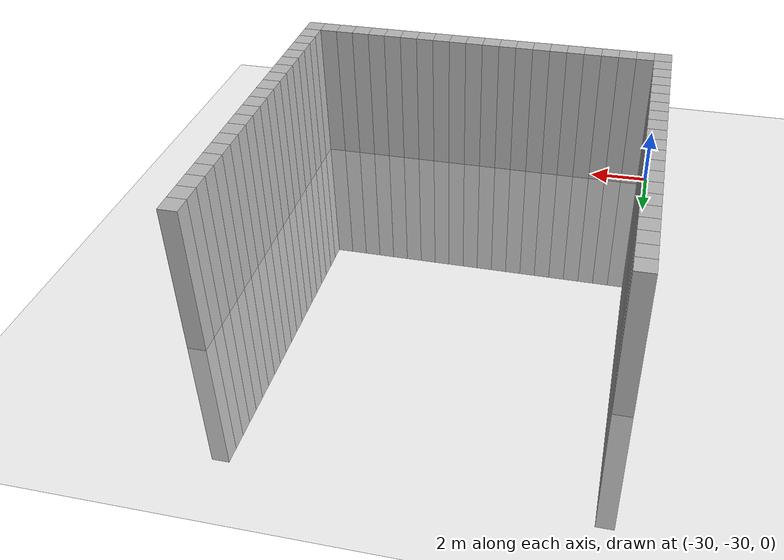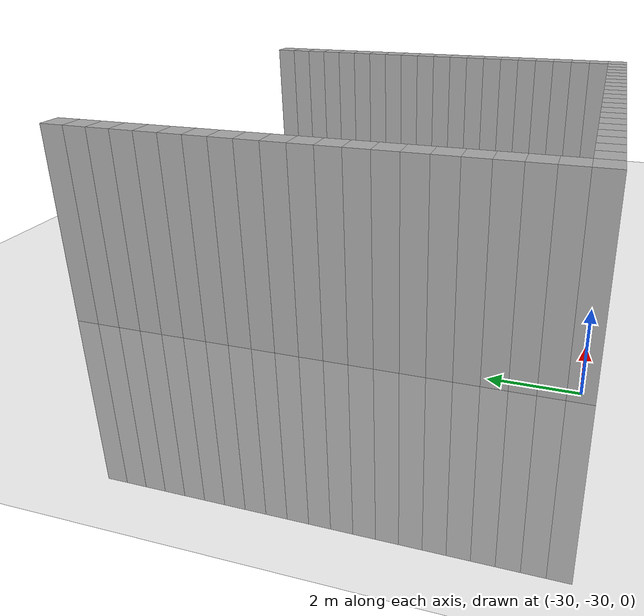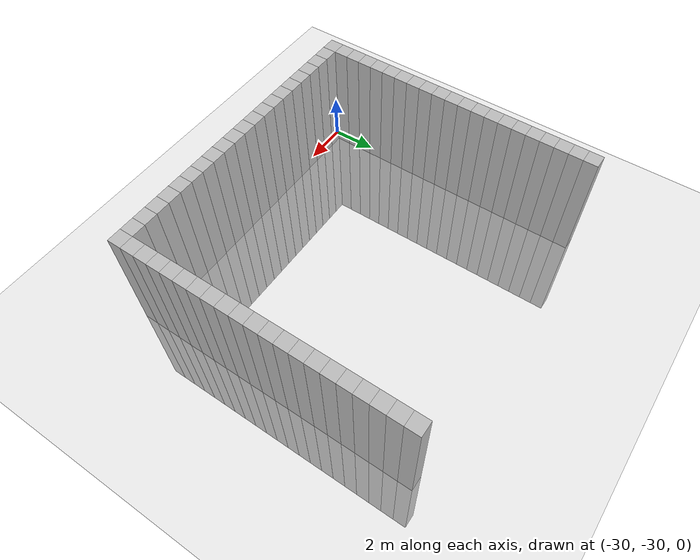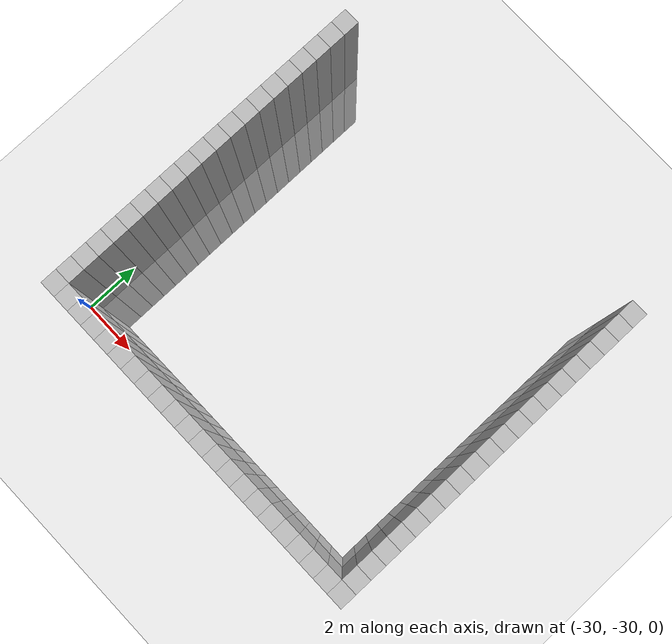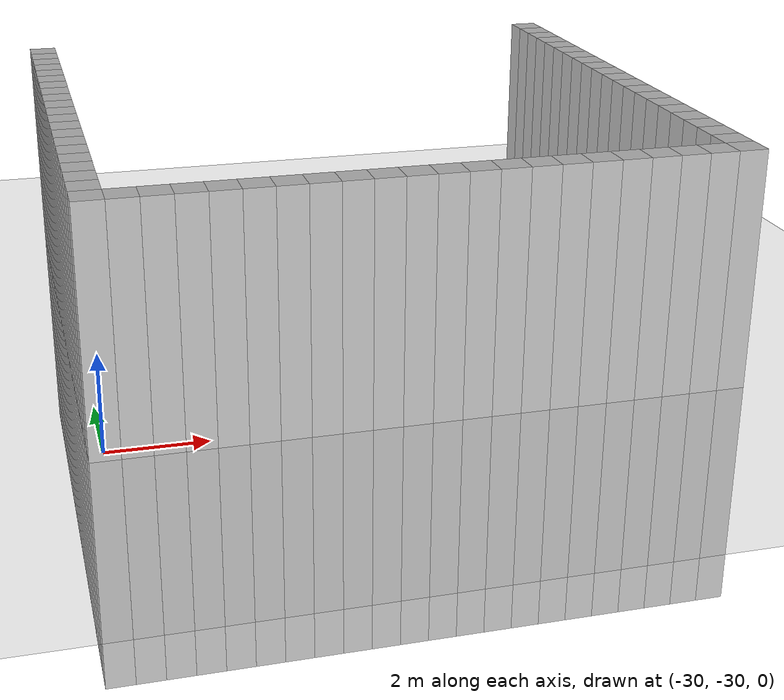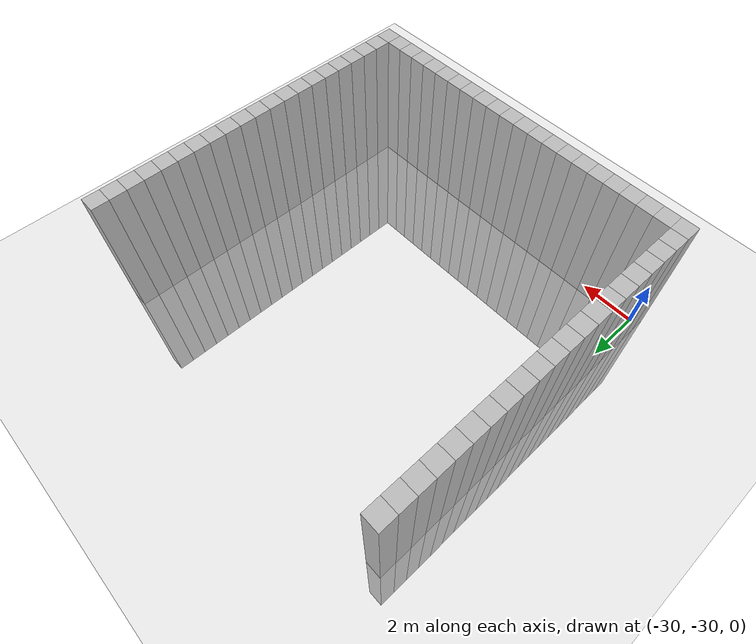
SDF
<sdf version="1.6">
 <world name="default">
  <model name="ground_plane">
   <static>1</static>
   <link name="link">
    <collision name="collision">
     <geometry><plane><normal>0 0 1</normal><size>100 100</size></plane></geometry>
     <surface><friction><ode><mu>100</mu><mu2>50</mu2></ode></friction></surface>
    </collision>
    <visual name="visual">
     <cast_shadows>0</cast_shadows>
     <geometry><plane><normal>0 0 1</normal><size>100 100</size></plane></geometry>
     <material>
      <script><uri>file://media/materials/scripts/gazebo.material</uri><name>Gazebo/Grey</name></script>
     </material>
    </visual>
   </link>
  </model>
  <model name="unit_cylinder_541">
   <static>1</static>
   <pose>-30 -30 0 0 -0 0</pose>
   <link name="link">
    <inertial>
     <mass>1</mass>
     <inertia><ixx>0.145833</ixx><ixy>0</ixy><ixz>0</ixz><iyy>0.145833</iyy><iyz>0</iyz><izz>0.125</izz></inertia>
    </inertial>
    <collision name="collision"><geometry><box><size>0.6 0.6 10</size></box></geometry></collision>
    <visual name="visual">
     <geometry><box><size>0.6 0.6 10</size></box></geometry>
     <material><ambient>0.753 0.753 0.753 1</ambient><diffuse>0.753 0.753 0.753 1</diffuse></material>
     <material>
      <script><name>Gazebo/Grey</name><uri>file://media/materials/scripts/gazebo.material</uri></script>
     </material>
    </visual>
   </link>
  </model>
  <model name="unit_cylinder_542">
   <static>1</static>
   <pose>-30 -29.4 0 0 -0 0</pose>
   <link name="link">
    <inertial>
     <mass>1</mass>
     <inertia><ixx>0.145833</ixx><ixy>0</ixy><ixz>0</ixz><iyy>0.145833</iyy><iyz>0</iyz><izz>0.125</izz></inertia>
    </inertial>
    <collision name="collision"><geometry><box><size>0.6 0.6 10</size></box></geometry></collision>
    <visual name="visual">
     <geometry><box><size>0.6 0.6 10</size></box></geometry>
     <material><ambient>0.753 0.753 0.753 1</ambient><diffuse>0.753 0.753 0.753 1</diffuse></material>
     <material>
      <script><name>Gazebo/Grey</name><uri>file://media/materials/scripts/gazebo.material</uri></script>
     </material>
    </visual>
   </link>
  </model>
  <model name="unit_cylinder_543">
   <static>1</static>
   <pose>-30 -28.8 0 0 -0 0</pose>
   <link name="link">
    <inertial>
     <mass>1</mass>
     <inertia><ixx>0.145833</ixx><ixy>0</ixy><ixz>0</ixz><iyy>0.145833</iyy><iyz>0</iyz><izz>0.125</izz></inertia>
    </inertial>
    <collision name="collision"><geometry><box><size>0.6 0.6 10</size></box></geometry></collision>
    <visual name="visual">
     <geometry><box><size>0.6 0.6 10</size></box></geometry>
     <material><ambient>0.753 0.753 0.753 1</ambient><diffuse>0.753 0.753 0.753 1</diffuse></material>
     <material>
      <script><name>Gazebo/Grey</name><uri>file://media/materials/scripts/gazebo.material</uri></script>
     </material>
    </visual>
   </link>
  </model>
  <model name="unit_cylinder_544">
   <static>1</static>
   <pose>-30 -28.2 0 0 -0 0</pose>
   <link name="link">
    <inertial>
     <mass>1</mass>
     <inertia><ixx>0.145833</ixx><ixy>0</ixy><ixz>0</ixz><iyy>0.145833</iyy><iyz>0</iyz><izz>0.125</izz></inertia>
    </inertial>
    <collision name="collision"><geometry><box><size>0.6 0.6 10</size></box></geometry></collision>
    <visual name="visual">
     <geometry><box><size>0.6 0.6 10</size></box></geometry>
     <material><ambient>0.753 0.753 0.753 1</ambient><diffuse>0.753 0.753 0.753 1</diffuse></material>
     <material>
      <script><name>Gazebo/Grey</name><uri>file://media/materials/scripts/gazebo.material</uri></script>
     </material>
    </visual>
   </link>
  </model>
  <model name="unit_cylinder_545">
   <static>1</static>
   <pose>-30 -27.6 0 0 -0 0</pose>
   <link name="link">
    <inertial>
     <mass>1</mass>
     <inertia><ixx>0.145833</ixx><ixy>0</ixy><ixz>0</ixz><iyy>0.145833</iyy><iyz>0</iyz><izz>0.125</izz></inertia>
    </inertial>
    <collision name="collision"><geometry><box><size>0.6 0.6 10</size></box></geometry></collision>
    <visual name="visual">
     <geometry><box><size>0.6 0.6 10</size></box></geometry>
     <material><ambient>0.753 0.753 0.753 1</ambient><diffuse>0.753 0.753 0.753 1</diffuse></material>
     <material>
      <script><name>Gazebo/Grey</name><uri>file://media/materials/scripts/gazebo.material</uri></script>
     </material>
    </visual>
   </link>
  </model>
  <model name="unit_cylinder_546">
   <static>1</static>
   <pose>-30 -27 0 0 -0 0</pose>
   <link name="link">
    <inertial>
     <mass>1</mass>
     <inertia><ixx>0.145833</ixx><ixy>0</ixy><ixz>0</ixz><iyy>0.145833</iyy><iyz>0</iyz><izz>0.125</izz></inertia>
    </inertial>
    <collision name="collision"><geometry><box><size>0.6 0.6 10</size></box></geometry></collision>
    <visual name="visual">
     <geometry><box><size>0.6 0.6 10</size></box></geometry>
     <material><ambient>0.753 0.753 0.753 1</ambient><diffuse>0.753 0.753 0.753 1</diffuse></material>
     <material>
      <script><name>Gazebo/Grey</name><uri>file://media/materials/scripts/gazebo.material</uri></script>
     </material>
    </visual>
   </link>
  </model>
  <model name="unit_cylinder_547">
   <static>1</static>
   <pose>-30 -26.4 0 0 -0 0</pose>
   <link name="link">
    <inertial>
     <mass>1</mass>
     <inertia><ixx>0.145833</ixx><ixy>0</ixy><ixz>0</ixz><iyy>0.145833</iyy><iyz>0</iyz><izz>0.125</izz></inertia>
    </inertial>
    <collision name="collision"><geometry><box><size>0.6 0.6 10</size></box></geometry></collision>
    <visual name="visual">
     <geometry><box><size>0.6 0.6 10</size></box></geometry>
     <material><ambient>0.753 0.753 0.753 1</ambient><diffuse>0.753 0.753 0.753 1</diffuse></material>
     <material>
      <script><name>Gazebo/Grey</name><uri>file://media/materials/scripts/gazebo.material</uri></script>
     </material>
    </visual>
   </link>
  </model>
  <model name="unit_cylinder_548">
   <static>1</static>
   <pose>-30 -25.8 0 0 -0 0</pose>
   <link name="link">
    <inertial>
     <mass>1</mass>
     <inertia><ixx>0.145833</ixx><ixy>0</ixy><ixz>0</ixz><iyy>0.145833</iyy><iyz>0</iyz><izz>0.125</izz></inertia>
    </inertial>
    <collision name="collision"><geometry><box><size>0.6 0.6 10</size></box></geometry></collision>
    <visual name="visual">
     <geometry><box><size>0.6 0.6 10</size></box></geometry>
     <material><ambient>0.753 0.753 0.753 1</ambient><diffuse>0.753 0.753 0.753 1</diffuse></material>
     <material>
      <script><name>Gazebo/Grey</name><uri>file://media/materials/scripts/gazebo.material</uri></script>
     </material>
    </visual>
   </link>
  </model>
  <model name="unit_cylinder_549">
   <static>1</static>
   <pose>-30 -25.2 0 0 -0 0</pose>
   <link name="link">
    <inertial>
     <mass>1</mass>
     <inertia><ixx>0.145833</ixx><ixy>0</ixy><ixz>0</ixz><iyy>0.145833</iyy><iyz>0</iyz><izz>0.125</izz></inertia>
    </inertial>
    <collision name="collision"><geometry><box><size>0.6 0.6 10</size></box></geometry></collision>
    <visual name="visual">
     <geometry><box><size>0.6 0.6 10</size></box></geometry>
     <material><ambient>0.753 0.753 0.753 1</ambient><diffuse>0.753 0.753 0.753 1</diffuse></material>
     <material>
      <script><name>Gazebo/Grey</name><uri>file://media/materials/scripts/gazebo.material</uri></script>
     </material>
    </visual>
   </link>
  </model>
  <model name="unit_cylinder_550">
   <static>1</static>
   <pose>-30 -24.6 0 0 -0 0</pose>
   <link name="link">
    <inertial>
     <mass>1</mass>
     <inertia><ixx>0.145833</ixx><ixy>0</ixy><ixz>0</ixz><iyy>0.145833</iyy><iyz>0</iyz><izz>0.125</izz></inertia>
    </inertial>
    <collision name="collision"><geometry><box><size>0.6 0.6 10</size></box></geometry></collision>
    <visual name="visual">
     <geometry><box><size>0.6 0.6 10</size></box></geometry>
     <material><ambient>0.753 0.753 0.753 1</ambient><diffuse>0.753 0.753 0.753 1</diffuse></material>
     <material>
      <script><name>Gazebo/Grey</name><uri>file://media/materials/scripts/gazebo.material</uri></script>
     </material>
    </visual>
   </link>
  </model>
  <model name="unit_cylinder_551">
   <static>1</static>
   <pose>-30 -24 0 0 -0 0</pose>
   <link name="link">
    <inertial>
     <mass>1</mass>
     <inertia><ixx>0.145833</ixx><ixy>0</ixy><ixz>0</ixz><iyy>0.145833</iyy><iyz>0</iyz><izz>0.125</izz></inertia>
    </inertial>
    <collision name="collision"><geometry><box><size>0.6 0.6 10</size></box></geometry></collision>
    <visual name="visual">
     <geometry><box><size>0.6 0.6 10</size></box></geometry>
     <material><ambient>0.753 0.753 0.753 1</ambient><diffuse>0.753 0.753 0.753 1</diffuse></material>
     <material>
      <script><name>Gazebo/Grey</name><uri>file://media/materials/scripts/gazebo.material</uri></script>
     </material>
    </visual>
   </link>
  </model>
  <model name="unit_cylinder_552">
   <static>1</static>
   <pose>-30 -23.4 0 0 -0 0</pose>
   <link name="link">
    <inertial>
     <mass>1</mass>
     <inertia><ixx>0.145833</ixx><ixy>0</ixy><ixz>0</ixz><iyy>0.145833</iyy><iyz>0</iyz><izz>0.125</izz></inertia>
    </inertial>
    <collision name="collision"><geometry><box><size>0.6 0.6 10</size></box></geometry></collision>
    <visual name="visual">
     <geometry><box><size>0.6 0.6 10</size></box></geometry>
     <material><ambient>0.753 0.753 0.753 1</ambient><diffuse>0.753 0.753 0.753 1</diffuse></material>
     <material>
      <script><name>Gazebo/Grey</name><uri>file://media/materials/scripts/gazebo.material</uri></script>
     </material>
    </visual>
   </link>
  </model>
  <model name="unit_cylinder_553">
   <static>1</static>
   <pose>-30 -22.8 0 0 -0 0</pose>
   <link name="link">
    <inertial>
     <mass>1</mass>
     <inertia><ixx>0.145833</ixx><ixy>0</ixy><ixz>0</ixz><iyy>0.145833</iyy><iyz>0</iyz><izz>0.125</izz></inertia>
    </inertial>
    <collision name="collision"><geometry><box><size>0.6 0.6 10</size></box></geometry></collision>
    <visual name="visual">
     <geometry><box><size>0.6 0.6 10</size></box></geometry>
     <material><ambient>0.753 0.753 0.753 1</ambient><diffuse>0.753 0.753 0.753 1</diffuse></material>
     <material>
      <script><name>Gazebo/Grey</name><uri>file://media/materials/scripts/gazebo.material</uri></script>
     </material>
    </visual>
   </link>
  </model>
  <model name="unit_cylinder_554">
   <static>1</static>
   <pose>-30 -22.2 0 0 -0 0</pose>
   <link name="link">
    <inertial>
     <mass>1</mass>
     <inertia><ixx>0.145833</ixx><ixy>0</ixy><ixz>0</ixz><iyy>0.145833</iyy><iyz>0</iyz><izz>0.125</izz></inertia>
    </inertial>
    <collision name="collision"><geometry><box><size>0.6 0.6 10</size></box></geometry></collision>
    <visual name="visual">
     <geometry><box><size>0.6 0.6 10</size></box></geometry>
     <material><ambient>0.753 0.753 0.753 1</ambient><diffuse>0.753 0.753 0.753 1</diffuse></material>
     <material>
      <script><name>Gazebo/Grey</name><uri>file://media/materials/scripts/gazebo.material</uri></script>
     </material>
    </visual>
   </link>
  </model>
  <model name="unit_cylinder_555">
   <static>1</static>
   <pose>-30 -21.6 0 0 -0 0</pose>
   <link name="link">
    <inertial>
     <mass>1</mass>
     <inertia><ixx>0.145833</ixx><ixy>0</ixy><ixz>0</ixz><iyy>0.145833</iyy><iyz>0</iyz><izz>0.125</izz></inertia>
    </inertial>
    <collision name="collision"><geometry><box><size>0.6 0.6 10</size></box></geometry></collision>
    <visual name="visual">
     <geometry><box><size>0.6 0.6 10</size></box></geometry>
     <material><ambient>0.753 0.753 0.753 1</ambient><diffuse>0.753 0.753 0.753 1</diffuse></material>
     <material>
      <script><name>Gazebo/Grey</name><uri>file://media/materials/scripts/gazebo.material</uri></script>
     </material>
    </visual>
   </link>
  </model>
  <model name="unit_cylinder_556">
   <static>1</static>
   <pose>-30 -21 0 0 -0 0</pose>
   <link name="link">
    <inertial>
     <mass>1</mass>
     <inertia><ixx>0.145833</ixx><ixy>0</ixy><ixz>0</ixz><iyy>0.145833</iyy><iyz>0</iyz><izz>0.125</izz></inertia>
    </inertial>
    <collision name="collision"><geometry><box><size>0.6 0.6 10</size></box></geometry></collision>
    <visual name="visual">
     <geometry><box><size>0.6 0.6 10</size></box></geometry>
     <material><ambient>0.753 0.753 0.753 1</ambient><diffuse>0.753 0.753 0.753 1</diffuse></material>
     <material>
      <script><name>Gazebo/Grey</name><uri>file://media/materials/scripts/gazebo.material</uri></script>
     </material>
    </visual>
   </link>
  </model>
  <model name="unit_cylinder_557">
   <static>1</static>
   <pose>-30 -20.4 0 0 -0 0</pose>
   <link name="link">
    <inertial>
     <mass>1</mass>
     <inertia><ixx>0.145833</ixx><ixy>0</ixy><ixz>0</ixz><iyy>0.145833</iyy><iyz>0</iyz><izz>0.125</izz></inertia>
    </inertial>
    <collision name="collision"><geometry><box><size>0.6 0.6 10</size></box></geometry></collision>
    <visual name="visual">
     <geometry><box><size>0.6 0.6 10</size></box></geometry>
     <material><ambient>0.753 0.753 0.753 1</ambient><diffuse>0.753 0.753 0.753 1</diffuse></material>
     <material>
      <script><name>Gazebo/Grey</name><uri>file://media/materials/scripts/gazebo.material</uri></script>
     </material>
    </visual>
   </link>
  </model>
  <model name="unit_cylinder_558">
   <static>1</static>
   <pose>-30 -19.8 0 0 -0 0</pose>
   <link name="link">
    <inertial>
     <mass>1</mass>
     <inertia><ixx>0.145833</ixx><ixy>0</ixy><ixz>0</ixz><iyy>0.145833</iyy><iyz>0</iyz><izz>0.125</izz></inertia>
    </inertial>
    <collision name="collision"><geometry><box><size>0.6 0.6 10</size></box></geometry></collision>
    <visual name="visual">
     <geometry><box><size>0.6 0.6 10</size></box></geometry>
     <material><ambient>0.753 0.753 0.753 1</ambient><diffuse>0.753 0.753 0.753 1</diffuse></material>
     <material>
      <script><name>Gazebo/Grey</name><uri>file://media/materials/scripts/gazebo.material</uri></script>
     </material>
    </visual>
   </link>
  </model>
  <model name="unit_cylinder_559">
   <static>1</static>
   <pose>-30 -19.2 0 0 -0 0</pose>
   <link name="link">
    <inertial>
     <mass>1</mass>
     <inertia><ixx>0.145833</ixx><ixy>0</ixy><ixz>0</ixz><iyy>0.145833</iyy><iyz>0</iyz><izz>0.125</izz></inertia>
    </inertial>
    <collision name="collision"><geometry><box><size>0.6 0.6 10</size></box></geometry></collision>
    <visual name="visual">
     <geometry><box><size>0.6 0.6 10</size></box></geometry>
     <material><ambient>0.753 0.753 0.753 1</ambient><diffuse>0.753 0.753 0.753 1</diffuse></material>
     <material>
      <script><name>Gazebo/Grey</name><uri>file://media/materials/scripts/gazebo.material</uri></script>
     </material>
    </visual>
   </link>
  </model>
  <model name="unit_cylinder_560">
   <static>1</static>
   <pose>-30 -18.6 0 0 -0 0</pose>
   <link name="link">
    <inertial>
     <mass>1</mass>
     <inertia><ixx>0.145833</ixx><ixy>0</ixy><ixz>0</ixz><iyy>0.145833</iyy><iyz>0</iyz><izz>0.125</izz></inertia>
    </inertial>
    <collision name="collision"><geometry><box><size>0.6 0.6 10</size></box></geometry></collision>
    <visual name="visual">
     <geometry><box><size>0.6 0.6 10</size></box></geometry>
     <material><ambient>0.753 0.753 0.753 1</ambient><diffuse>0.753 0.753 0.753 1</diffuse></material>
     <material>
      <script><name>Gazebo/Grey</name><uri>file://media/materials/scripts/gazebo.material</uri></script>
     </material>
    </visual>
   </link>
  </model>
  <model name="unit_cylinder_561">
   <static>1</static>
   <pose>-30 -18 0 0 -0 0</pose>
   <link name="link">
    <inertial>
     <mass>1</mass>
     <inertia><ixx>0.145833</ixx><ixy>0</ixy><ixz>0</ixz><iyy>0.145833</iyy><iyz>0</iyz><izz>0.125</izz></inertia>
    </inertial>
    <collision name="collision"><geometry><box><size>0.6 0.6 10</size></box></geometry></collision>
    <visual name="visual">
     <geometry><box><size>0.6 0.6 10</size></box></geometry>
     <material><ambient>0.753 0.753 0.753 1</ambient><diffuse>0.753 0.753 0.753 1</diffuse></material>
     <material>
      <script><name>Gazebo/Grey</name><uri>file://media/materials/scripts/gazebo.material</uri></script>
     </material>
    </visual>
   </link>
  </model>
  <model name="unit_cylinder_584">
   <static>1</static>
   <pose>-29.4 -30 0 0 -0 0</pose>
   <link name="link">
    <inertial>
     <mass>1</mass>
     <inertia><ixx>0.145833</ixx><ixy>0</ixy><ixz>0</ixz><iyy>0.145833</iyy><iyz>0</iyz><izz>0.125</izz></inertia>
    </inertial>
    <collision name="collision"><geometry><box><size>0.6 0.6 10</size></box></geometry></collision>
    <visual name="visual">
     <geometry><box><size>0.6 0.6 10</size></box></geometry>
     <material><ambient>0.753 0.753 0.753 1</ambient><diffuse>0.753 0.753 0.753 1</diffuse></material>
     <material>
      <script><name>Gazebo/Grey</name><uri>file://media/materials/scripts/gazebo.material</uri></script>
     </material>
    </visual>
   </link>
  </model>
  <model name="unit_cylinder_587">
   <static>1</static>
   <pose>-28.8 -30 0 0 -0 0</pose>
   <link name="link">
    <inertial>
     <mass>1</mass>
     <inertia><ixx>0.145833</ixx><ixy>0</ixy><ixz>0</ixz><iyy>0.145833</iyy><iyz>0</iyz><izz>0.125</izz></inertia>
    </inertial>
    <collision name="collision"><geometry><box><size>0.6 0.6 10</size></box></geometry></collision>
    <visual name="visual">
     <geometry><box><size>0.6 0.6 10</size></box></geometry>
     <material><ambient>0.753 0.753 0.753 1</ambient><diffuse>0.753 0.753 0.753 1</diffuse></material>
     <material>
      <script><name>Gazebo/Grey</name><uri>file://media/materials/scripts/gazebo.material</uri></script>
     </material>
    </visual>
   </link>
  </model>
  <model name="unit_cylinder_590">
   <static>1</static>
   <pose>-28.2 -30 0 0 -0 0</pose>
   <link name="link">
    <inertial>
     <mass>1</mass>
     <inertia><ixx>0.145833</ixx><ixy>0</ixy><ixz>0</ixz><iyy>0.145833</iyy><iyz>0</iyz><izz>0.125</izz></inertia>
    </inertial>
    <collision name="collision"><geometry><box><size>0.6 0.6 10</size></box></geometry></collision>
    <visual name="visual">
     <geometry><box><size>0.6 0.6 10</size></box></geometry>
     <material><ambient>0.753 0.753 0.753 1</ambient><diffuse>0.753 0.753 0.753 1</diffuse></material>
     <material>
      <script><name>Gazebo/Grey</name><uri>file://media/materials/scripts/gazebo.material</uri></script>
     </material>
    </visual>
   </link>
  </model>
  <model name="unit_cylinder_593">
   <static>1</static>
   <pose>-27.6 -30 0 0 -0 0</pose>
   <link name="link">
    <inertial>
     <mass>1</mass>
     <inertia><ixx>0.145833</ixx><ixy>0</ixy><ixz>0</ixz><iyy>0.145833</iyy><iyz>0</iyz><izz>0.125</izz></inertia>
    </inertial>
    <collision name="collision"><geometry><box><size>0.6 0.6 10</size></box></geometry></collision>
    <visual name="visual">
     <geometry><box><size>0.6 0.6 10</size></box></geometry>
     <material><ambient>0.753 0.753 0.753 1</ambient><diffuse>0.753 0.753 0.753 1</diffuse></material>
     <material>
      <script><name>Gazebo/Grey</name><uri>file://media/materials/scripts/gazebo.material</uri></script>
     </material>
    </visual>
   </link>
  </model>
  <model name="unit_cylinder_596">
   <static>1</static>
   <pose>-27 -30 0 0 -0 0</pose>
   <link name="link">
    <inertial>
     <mass>1</mass>
     <inertia><ixx>0.145833</ixx><ixy>0</ixy><ixz>0</ixz><iyy>0.145833</iyy><iyz>0</iyz><izz>0.125</izz></inertia>
    </inertial>
    <collision name="collision"><geometry><box><size>0.6 0.6 10</size></box></geometry></collision>
    <visual name="visual">
     <geometry><box><size>0.6 0.6 10</size></box></geometry>
     <material><ambient>0.753 0.753 0.753 1</ambient><diffuse>0.753 0.753 0.753 1</diffuse></material>
     <material>
      <script><name>Gazebo/Grey</name><uri>file://media/materials/scripts/gazebo.material</uri></script>
     </material>
    </visual>
   </link>
  </model>
  <model name="unit_cylinder_599">
   <static>1</static>
   <pose>-26.4 -30 0 0 -0 0</pose>
   <link name="link">
    <inertial>
     <mass>1</mass>
     <inertia><ixx>0.145833</ixx><ixy>0</ixy><ixz>0</ixz><iyy>0.145833</iyy><iyz>0</iyz><izz>0.125</izz></inertia>
    </inertial>
    <collision name="collision"><geometry><box><size>0.6 0.6 10</size></box></geometry></collision>
    <visual name="visual">
     <geometry><box><size>0.6 0.6 10</size></box></geometry>
     <material><ambient>0.753 0.753 0.753 1</ambient><diffuse>0.753 0.753 0.753 1</diffuse></material>
     <material>
      <script><name>Gazebo/Grey</name><uri>file://media/materials/scripts/gazebo.material</uri></script>
     </material>
    </visual>
   </link>
  </model>
  <model name="unit_cylinder_602">
   <static>1</static>
   <pose>-25.8 -30 0 0 -0 0</pose>
   <link name="link">
    <inertial>
     <mass>1</mass>
     <inertia><ixx>0.145833</ixx><ixy>0</ixy><ixz>0</ixz><iyy>0.145833</iyy><iyz>0</iyz><izz>0.125</izz></inertia>
    </inertial>
    <collision name="collision"><geometry><box><size>0.6 0.6 10</size></box></geometry></collision>
    <visual name="visual">
     <geometry><box><size>0.6 0.6 10</size></box></geometry>
     <material><ambient>0.753 0.753 0.753 1</ambient><diffuse>0.753 0.753 0.753 1</diffuse></material>
     <material>
      <script><name>Gazebo/Grey</name><uri>file://media/materials/scripts/gazebo.material</uri></script>
     </material>
    </visual>
   </link>
  </model>
  <model name="unit_cylinder_605">
   <static>1</static>
   <pose>-25.2 -30 0 0 -0 0</pose>
   <link name="link">
    <inertial>
     <mass>1</mass>
     <inertia><ixx>0.145833</ixx><ixy>0</ixy><ixz>0</ixz><iyy>0.145833</iyy><iyz>0</iyz><izz>0.125</izz></inertia>
    </inertial>
    <collision name="collision"><geometry><box><size>0.6 0.6 10</size></box></geometry></collision>
    <visual name="visual">
     <geometry><box><size>0.6 0.6 10</size></box></geometry>
     <material><ambient>0.753 0.753 0.753 1</ambient><diffuse>0.753 0.753 0.753 1</diffuse></material>
     <material>
      <script><name>Gazebo/Grey</name><uri>file://media/materials/scripts/gazebo.material</uri></script>
     </material>
    </visual>
   </link>
  </model>
  <model name="unit_cylinder_608">
   <static>1</static>
   <pose>-24.6 -30 0 0 -0 0</pose>
   <link name="link">
    <inertial>
     <mass>1</mass>
     <inertia><ixx>0.145833</ixx><ixy>0</ixy><ixz>0</ixz><iyy>0.145833</iyy><iyz>0</iyz><izz>0.125</izz></inertia>
    </inertial>
    <collision name="collision"><geometry><box><size>0.6 0.6 10</size></box></geometry></collision>
    <visual name="visual">
     <geometry><box><size>0.6 0.6 10</size></box></geometry>
     <material><ambient>0.753 0.753 0.753 1</ambient><diffuse>0.753 0.753 0.753 1</diffuse></material>
     <material>
      <script><name>Gazebo/Grey</name><uri>file://media/materials/scripts/gazebo.material</uri></script>
     </material>
    </visual>
   </link>
  </model>
  <model name="unit_cylinder_611">
   <static>1</static>
   <pose>-24 -30 0 0 -0 0</pose>
   <link name="link">
    <inertial>
     <mass>1</mass>
     <inertia><ixx>0.145833</ixx><ixy>0</ixy><ixz>0</ixz><iyy>0.145833</iyy><iyz>0</iyz><izz>0.125</izz></inertia>
    </inertial>
    <collision name="collision"><geometry><box><size>0.6 0.6 10</size></box></geometry></collision>
    <visual name="visual">
     <geometry><box><size>0.6 0.6 10</size></box></geometry>
     <material><ambient>0.753 0.753 0.753 1</ambient><diffuse>0.753 0.753 0.753 1</diffuse></material>
     <material>
      <script><name>Gazebo/Grey</name><uri>file://media/materials/scripts/gazebo.material</uri></script>
     </material>
    </visual>
   </link>
  </model>
  <model name="unit_cylinder_614">
   <static>1</static>
   <pose>-23.4 -30 0 0 -0 0</pose>
   <link name="link">
    <inertial>
     <mass>1</mass>
     <inertia><ixx>0.145833</ixx><ixy>0</ixy><ixz>0</ixz><iyy>0.145833</iyy><iyz>0</iyz><izz>0.125</izz></inertia>
    </inertial>
    <collision name="collision"><geometry><box><size>0.6 0.6 10</size></box></geometry></collision>
    <visual name="visual">
     <geometry><box><size>0.6 0.6 10</size></box></geometry>
     <material><ambient>0.753 0.753 0.753 1</ambient><diffuse>0.753 0.753 0.753 1</diffuse></material>
     <material>
      <script><name>Gazebo/Grey</name><uri>file://media/materials/scripts/gazebo.material</uri></script>
     </material>
    </visual>
   </link>
  </model>
  <model name="unit_cylinder_617">
   <static>1</static>
   <pose>-22.8 -30 0 0 -0 0</pose>
   <link name="link">
    <inertial>
     <mass>1</mass>
     <inertia><ixx>0.145833</ixx><ixy>0</ixy><ixz>0</ixz><iyy>0.145833</iyy><iyz>0</iyz><izz>0.125</izz></inertia>
    </inertial>
    <collision name="collision"><geometry><box><size>0.6 0.6 10</size></box></geometry></collision>
    <visual name="visual">
     <geometry><box><size>0.6 0.6 10</size></box></geometry>
     <material><ambient>0.753 0.753 0.753 1</ambient><diffuse>0.753 0.753 0.753 1</diffuse></material>
     <material>
      <script><name>Gazebo/Grey</name><uri>file://media/materials/scripts/gazebo.material</uri></script>
     </material>
    </visual>
   </link>
  </model>
  <model name="unit_cylinder_620">
   <static>1</static>
   <pose>-22.2 -30 0 0 -0 0</pose>
   <link name="link">
    <inertial>
     <mass>1</mass>
     <inertia><ixx>0.145833</ixx><ixy>0</ixy><ixz>0</ixz><iyy>0.145833</iyy><iyz>0</iyz><izz>0.125</izz></inertia>
    </inertial>
    <collision name="collision"><geometry><box><size>0.6 0.6 10</size></box></geometry></collision>
    <visual name="visual">
     <geometry><box><size>0.6 0.6 10</size></box></geometry>
     <material><ambient>0.753 0.753 0.753 1</ambient><diffuse>0.753 0.753 0.753 1</diffuse></material>
     <material>
      <script><name>Gazebo/Grey</name><uri>file://media/materials/scripts/gazebo.material</uri></script>
     </material>
    </visual>
   </link>
  </model>
  <model name="unit_cylinder_623">
   <static>1</static>
   <pose>-21.6 -30 0 0 -0 0</pose>
   <link name="link">
    <inertial>
     <mass>1</mass>
     <inertia><ixx>0.145833</ixx><ixy>0</ixy><ixz>0</ixz><iyy>0.145833</iyy><iyz>0</iyz><izz>0.125</izz></inertia>
    </inertial>
    <collision name="collision"><geometry><box><size>0.6 0.6 10</size></box></geometry></collision>
    <visual name="visual">
     <geometry><box><size>0.6 0.6 10</size></box></geometry>
     <material><ambient>0.753 0.753 0.753 1</ambient><diffuse>0.753 0.753 0.753 1</diffuse></material>
     <material>
      <script><name>Gazebo/Grey</name><uri>file://media/materials/scripts/gazebo.material</uri></script>
     </material>
    </visual>
   </link>
  </model>
  <model name="unit_cylinder_626">
   <static>1</static>
   <pose>-21 -30 0 0 -0 0</pose>
   <link name="link">
    <inertial>
     <mass>1</mass>
     <inertia><ixx>0.145833</ixx><ixy>0</ixy><ixz>0</ixz><iyy>0.145833</iyy><iyz>0</iyz><izz>0.125</izz></inertia>
    </inertial>
    <collision name="collision"><geometry><box><size>0.6 0.6 10</size></box></geometry></collision>
    <visual name="visual">
     <geometry><box><size>0.6 0.6 10</size></box></geometry>
     <material><ambient>0.753 0.753 0.753 1</ambient><diffuse>0.753 0.753 0.753 1</diffuse></material>
     <material>
      <script><name>Gazebo/Grey</name><uri>file://media/materials/scripts/gazebo.material</uri></script>
     </material>
    </visual>
   </link>
  </model>
  <model name="unit_cylinder_629">
   <static>1</static>
   <pose>-20.4 -30 0 0 -0 0</pose>
   <link name="link">
    <inertial>
     <mass>1</mass>
     <inertia><ixx>0.145833</ixx><ixy>0</ixy><ixz>0</ixz><iyy>0.145833</iyy><iyz>0</iyz><izz>0.125</izz></inertia>
    </inertial>
    <collision name="collision"><geometry><box><size>0.6 0.6 10</size></box></geometry></collision>
    <visual name="visual">
     <geometry><box><size>0.6 0.6 10</size></box></geometry>
     <material><ambient>0.753 0.753 0.753 1</ambient><diffuse>0.753 0.753 0.753 1</diffuse></material>
     <material>
      <script><name>Gazebo/Grey</name><uri>file://media/materials/scripts/gazebo.material</uri></script>
     </material>
    </visual>
   </link>
  </model>
  <model name="unit_cylinder_632">
   <static>1</static>
   <pose>-19.8 -30 0 0 -0 0</pose>
   <link name="link">
    <inertial>
     <mass>1</mass>
     <inertia><ixx>0.145833</ixx><ixy>0</ixy><ixz>0</ixz><iyy>0.145833</iyy><iyz>0</iyz><izz>0.125</izz></inertia>
    </inertial>
    <collision name="collision"><geometry><box><size>0.6 0.6 10</size></box></geometry></collision>
    <visual name="visual">
     <geometry><box><size>0.6 0.6 10</size></box></geometry>
     <material><ambient>0.753 0.753 0.753 1</ambient><diffuse>0.753 0.753 0.753 1</diffuse></material>
     <material>
      <script><name>Gazebo/Grey</name><uri>file://media/materials/scripts/gazebo.material</uri></script>
     </material>
    </visual>
   </link>
  </model>
  <model name="unit_cylinder_635">
   <static>1</static>
   <pose>-19.2 -30 0 0 -0 0</pose>
   <link name="link">
    <inertial>
     <mass>1</mass>
     <inertia><ixx>0.145833</ixx><ixy>0</ixy><ixz>0</ixz><iyy>0.145833</iyy><iyz>0</iyz><izz>0.125</izz></inertia>
    </inertial>
    <collision name="collision"><geometry><box><size>0.6 0.6 10</size></box></geometry></collision>
    <visual name="visual">
     <geometry><box><size>0.6 0.6 10</size></box></geometry>
     <material><ambient>0.753 0.753 0.753 1</ambient><diffuse>0.753 0.753 0.753 1</diffuse></material>
     <material>
      <script><name>Gazebo/Grey</name><uri>file://media/materials/scripts/gazebo.material</uri></script>
     </material>
    </visual>
   </link>
  </model>
  <model name="unit_cylinder_638">
   <static>1</static>
   <pose>-18.6 -30 0 0 -0 0</pose>
   <link name="link">
    <inertial>
     <mass>1</mass>
     <inertia><ixx>0.145833</ixx><ixy>0</ixy><ixz>0</ixz><iyy>0.145833</iyy><iyz>0</iyz><izz>0.125</izz></inertia>
    </inertial>
    <collision name="collision"><geometry><box><size>0.6 0.6 10</size></box></geometry></collision>
    <visual name="visual">
     <geometry><box><size>0.6 0.6 10</size></box></geometry>
     <material><ambient>0.753 0.753 0.753 1</ambient><diffuse>0.753 0.753 0.753 1</diffuse></material>
     <material>
      <script><name>Gazebo/Grey</name><uri>file://media/materials/scripts/gazebo.material</uri></script>
     </material>
    </visual>
   </link>
  </model>
  <model name="unit_cylinder_641">
   <static>1</static>
   <pose>-18 -30 0 0 -0 0</pose>
   <link name="link">
    <inertial>
     <mass>1</mass>
     <inertia><ixx>0.145833</ixx><ixy>0</ixy><ixz>0</ixz><iyy>0.145833</iyy><iyz>0</iyz><izz>0.125</izz></inertia>
    </inertial>
    <collision name="collision"><geometry><box><size>0.6 0.6 10</size></box></geometry></collision>
    <visual name="visual">
     <geometry><box><size>0.6 0.6 10</size></box></geometry>
     <material><ambient>0.753 0.753 0.753 1</ambient><diffuse>0.753 0.753 0.753 1</diffuse></material>
     <material>
      <script><name>Gazebo/Grey</name><uri>file://media/materials/scripts/gazebo.material</uri></script>
     </material>
    </visual>
   </link>
  </model>
  <model name="unit_cylinder_644">
   <static>1</static>
   <pose>-17.4 -30 0 0 -0 0</pose>
   <link name="link">
    <inertial>
     <mass>1</mass>
     <inertia><ixx>0.145833</ixx><ixy>0</ixy><ixz>0</ixz><iyy>0.145833</iyy><iyz>0</iyz><izz>0.125</izz></inertia>
    </inertial>
    <collision name="collision"><geometry><box><size>0.6 0.6 10</size></box></geometry></collision>
    <visual name="visual">
     <geometry><box><size>0.6 0.6 10</size></box></geometry>
     <material><ambient>0.753 0.753 0.753 1</ambient><diffuse>0.753 0.753 0.753 1</diffuse></material>
     <material>
      <script><name>Gazebo/Grey</name><uri>file://media/materials/scripts/gazebo.material</uri></script>
     </material>
    </visual>
   </link>
  </model>
  <model name="unit_cylinder_645">
   <static>1</static>
   <pose>-17.4 -29.4 0 0 -0 0</pose>
   <link name="link">
    <inertial>
     <mass>1</mass>
     <inertia><ixx>0.145833</ixx><ixy>0</ixy><ixz>0</ixz><iyy>0.145833</iyy><iyz>0</iyz><izz>0.125</izz></inertia>
    </inertial>
    <collision name="collision"><geometry><box><size>0.6 0.6 10</size></box></geometry></collision>
    <visual name="visual">
     <geometry><box><size>0.6 0.6 10</size></box></geometry>
     <material><ambient>0.753 0.753 0.753 1</ambient><diffuse>0.753 0.753 0.753 1</diffuse></material>
     <material>
      <script><name>Gazebo/Grey</name><uri>file://media/materials/scripts/gazebo.material</uri></script>
     </material>
    </visual>
   </link>
  </model>
  <model name="unit_cylinder_646">
   <static>1</static>
   <pose>-17.4 -28.8 0 0 -0 0</pose>
   <link name="link">
    <inertial>
     <mass>1</mass>
     <inertia><ixx>0.145833</ixx><ixy>0</ixy><ixz>0</ixz><iyy>0.145833</iyy><iyz>0</iyz><izz>0.125</izz></inertia>
    </inertial>
    <collision name="collision"><geometry><box><size>0.6 0.6 10</size></box></geometry></collision>
    <visual name="visual">
     <geometry><box><size>0.6 0.6 10</size></box></geometry>
     <material><ambient>0.753 0.753 0.753 1</ambient><diffuse>0.753 0.753 0.753 1</diffuse></material>
     <material>
      <script><name>Gazebo/Grey</name><uri>file://media/materials/scripts/gazebo.material</uri></script>
     </material>
    </visual>
   </link>
  </model>
  <model name="unit_cylinder_647">
   <static>1</static>
   <pose>-17.4 -28.2 0 0 -0 0</pose>
   <link name="link">
    <inertial>
     <mass>1</mass>
     <inertia><ixx>0.145833</ixx><ixy>0</ixy><ixz>0</ixz><iyy>0.145833</iyy><iyz>0</iyz><izz>0.125</izz></inertia>
    </inertial>
    <collision name="collision"><geometry><box><size>0.6 0.6 10</size></box></geometry></collision>
    <visual name="visual">
     <geometry><box><size>0.6 0.6 10</size></box></geometry>
     <material><ambient>0.753 0.753 0.753 1</ambient><diffuse>0.753 0.753 0.753 1</diffuse></material>
     <material>
      <script><name>Gazebo/Grey</name><uri>file://media/materials/scripts/gazebo.material</uri></script>
     </material>
    </visual>
   </link>
  </model>
  <model name="unit_cylinder_648">
   <static>1</static>
   <pose>-17.4 -27.6 0 0 -0 0</pose>
   <link name="link">
    <inertial>
     <mass>1</mass>
     <inertia><ixx>0.145833</ixx><ixy>0</ixy><ixz>0</ixz><iyy>0.145833</iyy><iyz>0</iyz><izz>0.125</izz></inertia>
    </inertial>
    <collision name="collision"><geometry><box><size>0.6 0.6 10</size></box></geometry></collision>
    <visual name="visual">
     <geometry><box><size>0.6 0.6 10</size></box></geometry>
     <material><ambient>0.753 0.753 0.753 1</ambient><diffuse>0.753 0.753 0.753 1</diffuse></material>
     <material>
      <script><name>Gazebo/Grey</name><uri>file://media/materials/scripts/gazebo.material</uri></script>
     </material>
    </visual>
   </link>
  </model>
  <model name="unit_cylinder_649">
   <static>1</static>
   <pose>-17.4 -27 0 0 -0 0</pose>
   <link name="link">
    <inertial>
     <mass>1</mass>
     <inertia><ixx>0.145833</ixx><ixy>0</ixy><ixz>0</ixz><iyy>0.145833</iyy><iyz>0</iyz><izz>0.125</izz></inertia>
    </inertial>
    <collision name="collision"><geometry><box><size>0.6 0.6 10</size></box></geometry></collision>
    <visual name="visual">
     <geometry><box><size>0.6 0.6 10</size></box></geometry>
     <material><ambient>0.753 0.753 0.753 1</ambient><diffuse>0.753 0.753 0.753 1</diffuse></material>
     <material>
      <script><name>Gazebo/Grey</name><uri>file://media/materials/scripts/gazebo.material</uri></script>
     </material>
    </visual>
   </link>
  </model>
  <model name="unit_cylinder_650">
   <static>1</static>
   <pose>-17.4 -26.4 0 0 -0 0</pose>
   <link name="link">
    <inertial>
     <mass>1</mass>
     <inertia><ixx>0.145833</ixx><ixy>0</ixy><ixz>0</ixz><iyy>0.145833</iyy><iyz>0</iyz><izz>0.125</izz></inertia>
    </inertial>
    <collision name="collision"><geometry><box><size>0.6 0.6 10</size></box></geometry></collision>
    <visual name="visual">
     <geometry><box><size>0.6 0.6 10</size></box></geometry>
     <material><ambient>0.753 0.753 0.753 1</ambient><diffuse>0.753 0.753 0.753 1</diffuse></material>
     <material>
      <script><name>Gazebo/Grey</name><uri>file://media/materials/scripts/gazebo.material</uri></script>
     </material>
    </visual>
   </link>
  </model>
  <model name="unit_cylinder_651">
   <static>1</static>
   <pose>-17.4 -25.8 0 0 -0 0</pose>
   <link name="link">
    <inertial>
     <mass>1</mass>
     <inertia><ixx>0.145833</ixx><ixy>0</ixy><ixz>0</ixz><iyy>0.145833</iyy><iyz>0</iyz><izz>0.125</izz></inertia>
    </inertial>
    <collision name="collision"><geometry><box><size>0.6 0.6 10</size></box></geometry></collision>
    <visual name="visual">
     <geometry><box><size>0.6 0.6 10</size></box></geometry>
     <material><ambient>0.753 0.753 0.753 1</ambient><diffuse>0.753 0.753 0.753 1</diffuse></material>
     <material>
      <script><name>Gazebo/Grey</name><uri>file://media/materials/scripts/gazebo.material</uri></script>
     </material>
    </visual>
   </link>
  </model>
  <model name="unit_cylinder_652">
   <static>1</static>
   <pose>-17.4 -25.2 0 0 -0 0</pose>
   <link name="link">
    <inertial>
     <mass>1</mass>
     <inertia><ixx>0.145833</ixx><ixy>0</ixy><ixz>0</ixz><iyy>0.145833</iyy><iyz>0</iyz><izz>0.125</izz></inertia>
    </inertial>
    <collision name="collision"><geometry><box><size>0.6 0.6 10</size></box></geometry></collision>
    <visual name="visual">
     <geometry><box><size>0.6 0.6 10</size></box></geometry>
     <material><ambient>0.753 0.753 0.753 1</ambient><diffuse>0.753 0.753 0.753 1</diffuse></material>
     <material>
      <script><name>Gazebo/Grey</name><uri>file://media/materials/scripts/gazebo.material</uri></script>
     </material>
    </visual>
   </link>
  </model>
  <model name="unit_cylinder_653">
   <static>1</static>
   <pose>-17.4 -24.6 0 0 -0 0</pose>
   <link name="link">
    <inertial>
     <mass>1</mass>
     <inertia><ixx>0.145833</ixx><ixy>0</ixy><ixz>0</ixz><iyy>0.145833</iyy><iyz>0</iyz><izz>0.125</izz></inertia>
    </inertial>
    <collision name="collision"><geometry><box><size>0.6 0.6 10</size></box></geometry></collision>
    <visual name="visual">
     <geometry><box><size>0.6 0.6 10</size></box></geometry>
     <material><ambient>0.753 0.753 0.753 1</ambient><diffuse>0.753 0.753 0.753 1</diffuse></material>
     <material>
      <script><name>Gazebo/Grey</name><uri>file://media/materials/scripts/gazebo.material</uri></script>
     </material>
    </visual>
   </link>
  </model>
  <model name="unit_cylinder_654">
   <static>1</static>
   <pose>-17.4 -24 0 0 -0 0</pose>
   <link name="link">
    <inertial>
     <mass>1</mass>
     <inertia><ixx>0.145833</ixx><ixy>0</ixy><ixz>0</ixz><iyy>0.145833</iyy><iyz>0</iyz><izz>0.125</izz></inertia>
    </inertial>
    <collision name="collision"><geometry><box><size>0.6 0.6 10</size></box></geometry></collision>
    <visual name="visual">
     <geometry><box><size>0.6 0.6 10</size></box></geometry>
     <material><ambient>0.753 0.753 0.753 1</ambient><diffuse>0.753 0.753 0.753 1</diffuse></material>
     <material>
      <script><name>Gazebo/Grey</name><uri>file://media/materials/scripts/gazebo.material</uri></script>
     </material>
    </visual>
   </link>
  </model>
  <model name="unit_cylinder_655">
   <static>1</static>
   <pose>-17.4 -23.4 0 0 -0 0</pose>
   <link name="link">
    <inertial>
     <mass>1</mass>
     <inertia><ixx>0.145833</ixx><ixy>0</ixy><ixz>0</ixz><iyy>0.145833</iyy><iyz>0</iyz><izz>0.125</izz></inertia>
    </inertial>
    <collision name="collision"><geometry><box><size>0.6 0.6 10</size></box></geometry></collision>
    <visual name="visual">
     <geometry><box><size>0.6 0.6 10</size></box></geometry>
     <material><ambient>0.753 0.753 0.753 1</ambient><diffuse>0.753 0.753 0.753 1</diffuse></material>
     <material>
      <script><name>Gazebo/Grey</name><uri>file://media/materials/scripts/gazebo.material</uri></script>
     </material>
    </visual>
   </link>
  </model>
  <model name="unit_cylinder_656">
   <static>1</static>
   <pose>-17.4 -22.8 0 0 -0 0</pose>
   <link name="link">
    <inertial>
     <mass>1</mass>
     <inertia><ixx>0.145833</ixx><ixy>0</ixy><ixz>0</ixz><iyy>0.145833</iyy><iyz>0</iyz><izz>0.125</izz></inertia>
    </inertial>
    <collision name="collision"><geometry><box><size>0.6 0.6 10</size></box></geometry></collision>
    <visual name="visual">
     <geometry><box><size>0.6 0.6 10</size></box></geometry>
     <material><ambient>0.753 0.753 0.753 1</ambient><diffuse>0.753 0.753 0.753 1</diffuse></material>
     <material>
      <script><name>Gazebo/Grey</name><uri>file://media/materials/scripts/gazebo.material</uri></script>
     </material>
    </visual>
   </link>
  </model>
  <model name="unit_cylinder_657">
   <static>1</static>
   <pose>-17.4 -22.2 0 0 -0 0</pose>
   <link name="link">
    <inertial>
     <mass>1</mass>
     <inertia><ixx>0.145833</ixx><ixy>0</ixy><ixz>0</ixz><iyy>0.145833</iyy><iyz>0</iyz><izz>0.125</izz></inertia>
    </inertial>
    <collision name="collision"><geometry><box><size>0.6 0.6 10</size></box></geometry></collision>
    <visual name="visual">
     <geometry><box><size>0.6 0.6 10</size></box></geometry>
     <material><ambient>0.753 0.753 0.753 1</ambient><diffuse>0.753 0.753 0.753 1</diffuse></material>
     <material>
      <script><name>Gazebo/Grey</name><uri>file://media/materials/scripts/gazebo.material</uri></script>
     </material>
    </visual>
   </link>
  </model>
  <model name="unit_cylinder_658">
   <static>1</static>
   <pose>-17.4 -21.6 0 0 -0 0</pose>
   <link name="link">
    <inertial>
     <mass>1</mass>
     <inertia><ixx>0.145833</ixx><ixy>0</ixy><ixz>0</ixz><iyy>0.145833</iyy><iyz>0</iyz><izz>0.125</izz></inertia>
    </inertial>
    <collision name="collision"><geometry><box><size>0.6 0.6 10</size></box></geometry></collision>
    <visual name="visual">
     <geometry><box><size>0.6 0.6 10</size></box></geometry>
     <material><ambient>0.753 0.753 0.753 1</ambient><diffuse>0.753 0.753 0.753 1</diffuse></material>
     <material>
      <script><name>Gazebo/Grey</name><uri>file://media/materials/scripts/gazebo.material</uri></script>
     </material>
    </visual>
   </link>
  </model>
  <model name="unit_cylinder_659">
   <static>1</static>
   <pose>-17.4 -21 0 0 -0 0</pose>
   <link name="link">
    <inertial>
     <mass>1</mass>
     <inertia><ixx>0.145833</ixx><ixy>0</ixy><ixz>0</ixz><iyy>0.145833</iyy><iyz>0</iyz><izz>0.125</izz></inertia>
    </inertial>
    <collision name="collision"><geometry><box><size>0.6 0.6 10</size></box></geometry></collision>
    <visual name="visual">
     <geometry><box><size>0.6 0.6 10</size></box></geometry>
     <material><ambient>0.753 0.753 0.753 1</ambient><diffuse>0.753 0.753 0.753 1</diffuse></material>
     <material>
      <script><name>Gazebo/Grey</name><uri>file://media/materials/scripts/gazebo.material</uri></script>
     </material>
    </visual>
   </link>
  </model>
  <model name="unit_cylinder_660">
   <static>1</static>
   <pose>-17.4 -20.4 0 0 -0 0</pose>
   <link name="link">
    <inertial>
     <mass>1</mass>
     <inertia><ixx>0.145833</ixx><ixy>0</ixy><ixz>0</ixz><iyy>0.145833</iyy><iyz>0</iyz><izz>0.125</izz></inertia>
    </inertial>
    <collision name="collision"><geometry><box><size>0.6 0.6 10</size></box></geometry></collision>
    <visual name="visual">
     <geometry><box><size>0.6 0.6 10</size></box></geometry>
     <material><ambient>0.753 0.753 0.753 1</ambient><diffuse>0.753 0.753 0.753 1</diffuse></material>
     <material>
      <script><name>Gazebo/Grey</name><uri>file://media/materials/scripts/gazebo.material</uri></script>
     </material>
    </visual>
   </link>
  </model>
  <model name="unit_cylinder_661">
   <static>1</static>
   <pose>-17.4 -19.8 0 0 -0 0</pose>
   <link name="link">
    <inertial>
     <mass>1</mass>
     <inertia><ixx>0.145833</ixx><ixy>0</ixy><ixz>0</ixz><iyy>0.145833</iyy><iyz>0</iyz><izz>0.125</izz></inertia>
    </inertial>
    <collision name="collision"><geometry><box><size>0.6 0.6 10</size></box></geometry></collision>
    <visual name="visual">
     <geometry><box><size>0.6 0.6 10</size></box></geometry>
     <material><ambient>0.753 0.753 0.753 1</ambient><diffuse>0.753 0.753 0.753 1</diffuse></material>
     <material>
      <script><name>Gazebo/Grey</name><uri>file://media/materials/scripts/gazebo.material</uri></script>
     </material>
    </visual>
   </link>
  </model>
  <model name="unit_cylinder_662">
   <static>1</static>
   <pose>-17.4 -19.2 0 0 -0 0</pose>
   <link name="link">
    <inertial>
     <mass>1</mass>
     <inertia><ixx>0.145833</ixx><ixy>0</ixy><ixz>0</ixz><iyy>0.145833</iyy><iyz>0</iyz><izz>0.125</izz></inertia>
    </inertial>
    <collision name="collision"><geometry><box><size>0.6 0.6 10</size></box></geometry></collision>
    <visual name="visual">
     <geometry><box><size>0.6 0.6 10</size></box></geometry>
     <material><ambient>0.753 0.753 0.753 1</ambient><diffuse>0.753 0.753 0.753 1</diffuse></material>
     <material>
      <script><name>Gazebo/Grey</name><uri>file://media/materials/scripts/gazebo.material</uri></script>
     </material>
    </visual>
   </link>
  </model>
  <model name="unit_cylinder_663">
   <static>1</static>
   <pose>-17.4 -18.6 0 0 -0 0</pose>
   <link name="link">
    <inertial>
     <mass>1</mass>
     <inertia><ixx>0.145833</ixx><ixy>0</ixy><ixz>0</ixz><iyy>0.145833</iyy><iyz>0</iyz><izz>0.125</izz></inertia>
    </inertial>
    <collision name="collision"><geometry><box><size>0.6 0.6 10</size></box></geometry></collision>
    <visual name="visual">
     <geometry><box><size>0.6 0.6 10</size></box></geometry>
     <material><ambient>0.753 0.753 0.753 1</ambient><diffuse>0.753 0.753 0.753 1</diffuse></material>
     <material>
      <script><name>Gazebo/Grey</name><uri>file://media/materials/scripts/gazebo.material</uri></script>
     </material>
    </visual>
   </link>
  </model>
  <model name="unit_cylinder_664">
   <static>1</static>
   <pose>-17.4 -18 0 0 -0 0</pose>
   <link name="link">
    <inertial>
     <mass>1</mass>
     <inertia><ixx>0.145833</ixx><ixy>0</ixy><ixz>0</ixz><iyy>0.145833</iyy><iyz>0</iyz><izz>0.125</izz></inertia>
    </inertial>
    <collision name="collision"><geometry><box><size>0.6 0.6 10</size></box></geometry></collision>
    <visual name="visual">
     <geometry><box><size>0.6 0.6 10</size></box></geometry>
     <material><ambient>0.753 0.753 0.753 1</ambient><diffuse>0.753 0.753 0.753 1</diffuse></material>
     <material>
      <script><name>Gazebo/Grey</name><uri>file://media/materials/scripts/gazebo.material</uri></script>
     </material>
    </visual>
   </link>
  </model>
 </world>
</sdf>
